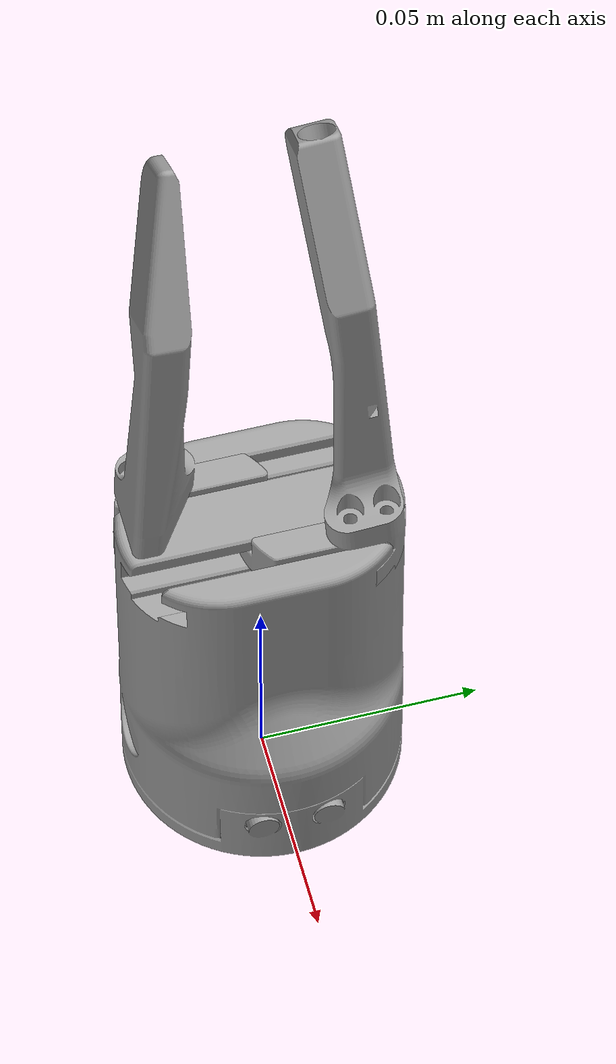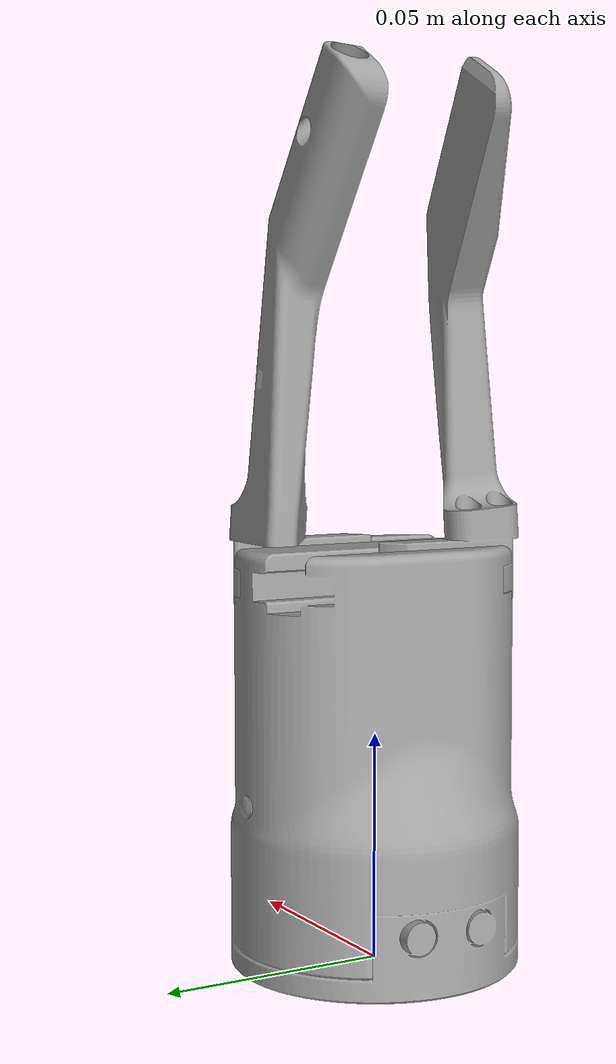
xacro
<?xml version="1.0" ?>
<robot name="gripper_pgc" xmlns:xacro="http://www.ros.org/wiki/xacro">

<xacro:include filename="$(find gripper_pgc_description)/urdf/materials.xacro" />
<xacro:include filename="$(find gripper_pgc_description)/urdf/gripper_pgc.trans" />
<link name="gripper_base_link">
  <inertial>
    <origin xyz="-5.809776703091203e-09 5.051935477190558e-05 0.0398168455127548" rpy="0 0 0"/>
    <mass value="1.786615911360463"/>
    <inertia ixx="0.001547" iyy="0.001445" izz="0.000792" ixy="-0.0" iyz="2e-06" ixz="0.0"/>
  </inertial>
  <visual>
    <origin xyz="0 0 0" rpy="0 0 0"/>
    <geometry>
      <mesh filename="package://gripper_pgc_description/meshes/base_link.stl" scale="0.001 0.001 0.001"/>
    </geometry>
    <material name="steel_satin"/>
  </visual>
  <collision>
    <origin xyz="0 0 0" rpy="0 0 0"/>
    <geometry>
      <mesh filename="package://gripper_pgc_description/meshes/base_link.stl" scale="0.001 0.001 0.001"/>
    </geometry>
  </collision>
</link>

<link name="left_1">
  <inertial>
    <origin xyz="0.0046630280956114776 -0.014845239497245508 0.04453512941530631" rpy="0 0 0"/>
    <mass value="0.13417714475318895"/>
    <inertia ixx="0.000161" iyy="0.000161" izz="1.2e-05" ixy="2e-06" iyz="4e-06" ixz="3e-06"/>
  </inertial>
  <visual>
    <origin xyz="0.01085 0.0 -0.0793" rpy="0 0 0"/>
    <geometry>
      <mesh filename="package://gripper_pgc_description/meshes/left_1.stl" scale="0.001 0.001 0.001"/>
    </geometry>
    <material name="steel_satin"/>
  </visual>
  <collision>
    <origin xyz="0.01085 0.0 -0.0793" rpy="0 0 0"/>
    <geometry>
      <mesh filename="package://gripper_pgc_description/meshes/left_1.stl" scale="0.001 0.001 0.001"/>
    </geometry>
  </collision>
</link>

<link name="right_1">
  <inertial>
    <origin xyz="-0.010772104205448 0.01494078259277849 0.04626694299321167" rpy="0 0 0"/>
    <mass value="0.13778952772229328"/>
    <inertia ixx="0.000175" iyy="0.000182" izz="1.8e-05" ixy="2e-06" iyz="-5e-06" ixz="3.9e-05"/>
  </inertial>
  <visual>
    <origin xyz="-0.01085 0.0 -0.0793" rpy="0 0 0"/>
    <geometry>
      <mesh filename="package://gripper_pgc_description/meshes/right_1.stl" scale="0.001 0.001 0.001"/>
    </geometry>
    <material name="steel_satin"/>
  </visual>
  <collision>
    <origin xyz="-0.01085 0.0 -0.0793" rpy="0 0 0"/>
    <geometry>
      <mesh filename="package://gripper_pgc_description/meshes/right_1.stl" scale="0.001 0.001 0.001"/>
    </geometry>
  </collision>
</link>

<link name="stylus_frame_1">
  <inertial>
    <origin xyz="-0.00033322705489337995 0.0021095066595683883 0.005748079976226839" rpy="0 0 0"/>
    <mass value="0.0024609401690843424"/>
    <inertia ixx="0.0" iyy="0.0" izz="0.0" ixy="0.0" iyz="0.0" ixz="0.0"/>
  </inertial>
</link>
<link name="gripper_middle">
</link>
<joint name="left_joint" type="prismatic">
  <origin xyz="-0.01085 0.0 0.0793" rpy="0 0 0"/>
  <parent link="gripper_base_link"/>
  <child link="left_1"/>
  <axis xyz="0.0 1.0 0.0"/>
  <limit upper="0.013" lower="0.0" effort="20" velocity="0.2"/>

</joint>

<joint name="right_joint" type="prismatic">
  <origin xyz="0.01085 0.0 0.0793" rpy="0 0 0"/>
  <parent link="gripper_base_link"/>
  <child link="right_1"/>
  <axis xyz="0.0 -1.0 0.0"/>
  <limit upper="0.013" lower="0.000" effort="20" velocity="0.2"/>
    <mimic joint="left_joint" multiplier="1"/>
</joint>

<joint name="Rigid 10" type="fixed">
  <origin xyz="-0.032368 0.018 0.116026" rpy="0 -0.523599 0"/>
  <parent link="right_1"/>
  <child link="stylus_frame_1"/>
</joint>

<joint name="gripper_middle_joint" type="fixed">
  <origin xyz="-0.025 0 0.19" rpy="0 -0.523599 0"/>
  <parent link="gripper_base_link"/>
  <child link="gripper_middle"/>
</joint>
</robot>

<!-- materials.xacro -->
<robot name="gripper_pgc" xmlns:xacro="http://www.ros.org/wiki/xacro" >

<material name="silver_default">
  <color rgba="0.700 0.700 0.700 1.000"/>
</material>
<material name="steel_satin">
  <color rgba="0.6274509803921569 0.6274509803921569 0.6274509803921569 1.0"/>
</material>

</robot>
